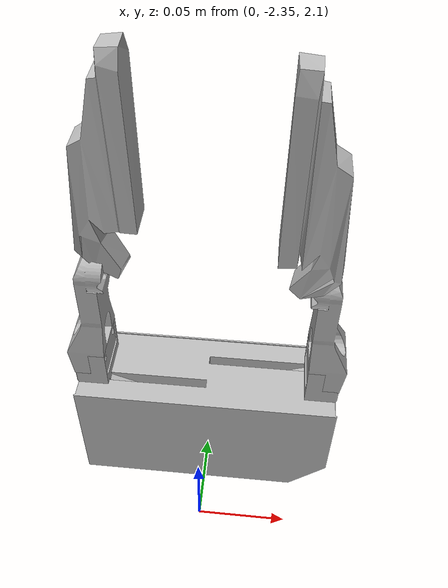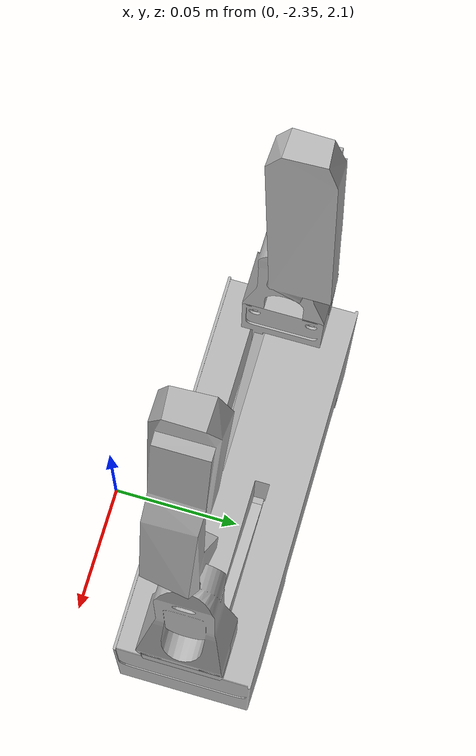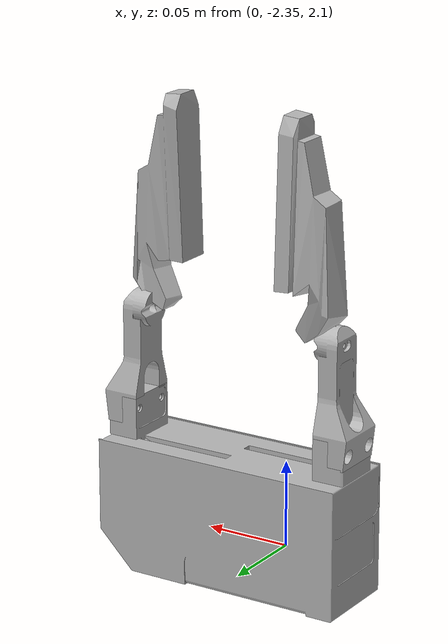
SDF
<?xml version="1.0" ?>
<sdf version='1.6'>
  <world name='default'>
  <model name='wsg50_with_gripper'>

    <pose frame=''>0 -2.3 2.1 0 0 0</pose>
    <link name='world'>
	<pose frame=''>0 0 0 0 0 0</pose>
      <inertial>
        <pose frame=''>0 0 0 0 0 0</pose>
        <mass>0.1</mass>
        <inertia>
          <ixx>1</ixx>
          <ixy>0</ixy>
          <ixz>0</ixz>
          <iyy>1</iyy>
          <iyz>0</iyz>
          <izz>1</izz>
        </inertia>
      </inertial>
    </link>

    <joint name='base_joint' type='fixed'>
      <parent>world</parent>
      <child>base_link</child>
    </joint>

    <link name='base_link'>
      <pose frame=''>0 0 0 0 0 0</pose>
      <inertial>
        <pose frame=''>0 0 0 0 0 0</pose>
        <mass>1.2</mass>
        <inertia>
          <ixx>1</ixx>
          <ixy>0</ixy>
          <ixz>0</ixz>
          <iyy>1</iyy>
          <iyz>0</iyz>
          <izz>1</izz>
        </inertia>
      </inertial>

      <visual name='base_link_visual'>
        <pose frame=''>0 0 0 0 -0 0</pose>
        <geometry>
          <mesh>
            <scale>1 1 1</scale>
            <uri>meshes/WSG50_110.stl</uri>
          </mesh>
        </geometry>
        <material>

        </material>
      </visual>

    </link>

    <link name='motor'>
      <pose frame=''>0 0 0.03 0 0 0</pose>
      <inertial>
        <pose frame=''>0 0 0 0 0 0</pose>
        <mass>0.1</mass>
        <inertia>
          <ixx>0.1</ixx>
          <ixy>0</ixy>
          <ixz>0</ixz>
          <iyy>0.1</iyy>
          <iyz>0</iyz>
          <izz>0.1</izz>
        </inertia>
      </inertial>
      <visual name='motor_visual'>
        <pose frame=''>0 0 0.01 0 0 0</pose>
        <geometry>
		  <box>
            <size>0.02 0.02 0.02 </size>
          </box>
        </geometry>
      </visual>
    </link>

    <joint name='base_joint_motor' type='prismatic'>
      <child>motor</child>
      <parent>base_link</parent>
      <axis>
        <xyz>0 0 1</xyz>
        <limit>
          <lower>-0.047</lower>
          <upper>0.001</upper>
          <effort>10.0</effort>
          <velocity>10.0</velocity>
        </limit>
        <dynamics>
          <damping>0</damping>
          <friction>0</friction>
          <spring_reference>0</spring_reference>
          <spring_stiffness>0</spring_stiffness>
        </dynamics>
      </axis>
    </joint>

    <link name='left_hinge'>
      <pose frame=''>0 0 0.04 0 0 0</pose>
      <inertial>
        <pose frame=''>0 0 0.035 0 0 0</pose>
        <mass>0.1</mass>
        <inertia>
          <ixx>0.1</ixx>
          <ixy>0</ixy>
          <ixz>0</ixz>
          <iyy>0.1</iyy>
          <iyz>0</iyz>
          <izz>0.1</izz>
        </inertia>
      </inertial>
      <visual name='motor_visual'>
        <pose frame=''>-0.03 0 0.01 0 -1.2 0</pose>
        <geometry>
		  <box>
            <size>0.02 0.02 0.07 </size>
          </box>
        </geometry>
      </visual>
    </link>

    <joint name='motor_left_hinge_joint' type='revolute'>
      <child>left_hinge</child>
      <parent>motor</parent>
      <axis>
        <xyz>0 1 0</xyz>
        <limit>
          <lower>-20.0</lower>
          <upper>20.0</upper>
          <effort>10</effort>
          <velocity>10</velocity>
        </limit>
        <dynamics>
          <damping>0</damping>
          <friction>0</friction>
          <spring_reference>0</spring_reference>
          <spring_stiffness>0</spring_stiffness>
        </dynamics>
        <use_parent_model_frame>0</use_parent_model_frame>
      </axis>
    </joint>

    <link name='right_hinge'>
      <pose frame=''>0 0 0.04 0 0 0</pose>
      <inertial>
        <pose frame=''>0 0 0.035 0 0 0</pose>
        <mass>0.1</mass>
        <inertia>
          <ixx>0.1</ixx>
          <ixy>0</ixy>
          <ixz>0</ixz>
          <iyy>0.1</iyy>
          <iyz>0</iyz>
          <izz>0.1</izz>
        </inertia>
      </inertial>
      <visual name='motor_visual'>
        <pose frame=''>0.03 0 0.01 0 1.2 0</pose>
        <geometry>
		  <box>
            <size>0.02 0.02 0.07 </size>
          </box>
        </geometry>
      </visual>
    </link>

    <joint name='motor_right_hinge_joint' type='revolute'>
      <child>right_hinge</child>
      <parent>motor</parent>
      <axis>
        <xyz>0 1 0</xyz>
        <limit>
          <lower>-20.0</lower>
          <upper>20.0</upper>
          <effort>10</effort>
          <velocity>10</velocity>
        </limit>
        <dynamics>
          <damping>0</damping>
          <friction>0</friction>
          <spring_reference>0</spring_reference>
          <spring_stiffness>0</spring_stiffness>
        </dynamics>
        <use_parent_model_frame>0</use_parent_model_frame>
      </axis>
    </joint>

    <link name='gripper_left'>
      <pose frame=''>-0.055 0 0.06 0 -0 0</pose>
      <inertial>
        <pose frame=''>0 0 0.0115 0 -0 0</pose>
        <mass>0.2</mass>
        <inertia>
          <ixx>0.1</ixx>
          <ixy>0</ixy>
          <ixz>0</ixz>
          <iyy>0.1</iyy>
          <iyz>0</iyz>
          <izz>0.1</izz>
        </inertia>
      </inertial>

      <visual name='gripper_left_visual'>
        <pose frame=''>0 0 -0.06 0 0 0</pose>
        <geometry>
          <mesh>
            <scale>0.001 0.001 0.001</scale>
            <uri>meshes/GUIDE_WSG50_110.stl</uri>
          </mesh>
        </geometry>
      </visual>
      <visual name='gripper_left_fixed_joint_lump__finger_left_visual_1'>
        <pose frame=''>0 0 -0.037 0 0 0</pose>
        <geometry>
          <mesh>
            <scale>0.001 0.001 0.001</scale>
            <uri>meshes/WSG-FMF.stl</uri>
          </mesh>
        </geometry>
      </visual>

    </link>

    <joint name='gripper_left_hinge_joint' type='revolute'>
      <child>gripper_left</child>
      <parent>left_hinge</parent>
      <axis>
        <xyz>0 1 0</xyz>
        <limit>
          <lower>-4.0</lower>
          <upper>4.0</upper>
          <effort>10</effort>
          <velocity>10</velocity>
        </limit>
        <dynamics>
          <damping>0.01</damping>
          <friction>0</friction>
          <spring_reference>0</spring_reference>
          <spring_stiffness>0</spring_stiffness>
        </dynamics>
        <use_parent_model_frame>0</use_parent_model_frame>
      </axis>
    </joint>

    <link name='gripper_right'>
      <pose frame=''>0.055 0 0.06 0 0 3.14159</pose>
      <inertial>
        <pose frame=''>0 0 0.0115 0 -0 0</pose>
        <mass>0.2</mass>
        <inertia>
          <ixx>0.1</ixx>
          <ixy>0</ixy>
          <ixz>0</ixz>
          <iyy>0.1</iyy>
          <iyz>0</iyz>
          <izz>0.1</izz>
        </inertia>
      </inertial>

      <visual name='gripper_right_visual'>
        <pose frame=''>0 0 -0.06 0 0 0</pose>
        <geometry>
          <mesh>
            <scale>0.001 0.001 0.001</scale>
            <uri>meshes/GUIDE_WSG50_110.stl</uri>
          </mesh>
        </geometry>
      </visual>
      <visual name='gripper_right_fixed_joint_lump__finger_right_visual_1'>
        <pose frame=''>0 0 -0.037 0 0 0</pose>
        <geometry>
          <mesh>
            <scale>0.001 0.001 0.001</scale>
            <uri>meshes/WSG-FMF.stl</uri>
          </mesh>
        </geometry>
      </visual>
    </link>

    <joint name='gripper_right_hinge_joint' type='revolute'>
      <child>gripper_right</child>
      <parent>right_hinge</parent>
      <axis>
        <xyz>0 1 0</xyz>
        <limit>
          <lower>-4.0</lower>
          <upper>4.0</upper>
          <effort>10</effort>
          <velocity>10</velocity>
        </limit>
        <dynamics>
          <damping>0.01</damping>
          <friction>0</friction>
          <spring_reference>0</spring_reference>
          <spring_stiffness>0</spring_stiffness>
        </dynamics>
        <use_parent_model_frame>0</use_parent_model_frame>
      </axis>
    </joint>

    <link name='finger_right'>
      <contact>
        <lateral_friction value="1.0"/>
        <spinning_friction value="1.5"/>
      </contact>
      <pose frame=''>0.042 0 0.145 0 0 1.5708</pose>
      <inertial>
        <mass>0.2</mass>
        <inertia>
          <ixx>0.1</ixx>
          <ixy>0</ixy>
          <ixz>0</ixz>
          <iyy>0.1</iyy>
          <iyz>0</iyz>
          <izz>0.1</izz>
        </inertia>
      </inertial>

        <collision name='finger_right_collision'>
  	<pose frame=''>0 0 0.042 0 0 0 </pose>
  	<geometry>
         <box>
                <size>0.02 0.02 0.15 </size>
              </box>

          </geometry>
        </collision>

      <visual name='finger_right_visual'>
        <pose frame=''>0 0 0 0 0 0 </pose>
        <geometry>
          <mesh>
            <scale>1 1 1 </scale>
            <uri>meshes/l_gripper_tip_scaled.stl</uri>
          </mesh>
        </geometry>
      </visual>
    </link>

    <joint name='gripper_finger_right' type='fixed'>
      <parent>gripper_right</parent>
      <child>finger_right</child>
    </joint>

    <link name='finger_left'>
      <contact>
        <lateral_friction value="1.0"/>
        <spinning_friction value="1.5"/>
      </contact>
      <pose frame=''>-0.042 0 0.145 0 0 4.71239</pose>
      <inertial>
        <mass>0.2</mass>
        <inertia>
          <ixx>0.1</ixx>
          <ixy>0</ixy>
          <ixz>0</ixz>
          <iyy>0.1</iyy>
          <iyz>0</iyz>
          <izz>0.1</izz>
        </inertia>
      </inertial>

      <collision name='finger_left_collision'>
        <pose frame=''>0 0 0.042 0 0 0 </pose>
        <geometry>
               <box>
              <size>0.02 0.02 0.15 </size>
            </box>

        </geometry>
      </collision>

      <visual name='finger_left_visual'>
        <pose frame=''>0 0 0 0 0 0 </pose>
        <geometry>
          <mesh>
            <scale>1 1 1 </scale>
            <uri>meshes/l_gripper_tip_scaled.stl</uri>
          </mesh>
        </geometry>
      </visual>
    </link>

    <joint name='gripper_finger_left' type='fixed'>
      <parent>gripper_left</parent>
      <child>finger_left</child>
    </joint>
  </model>
</world>
</sdf>
